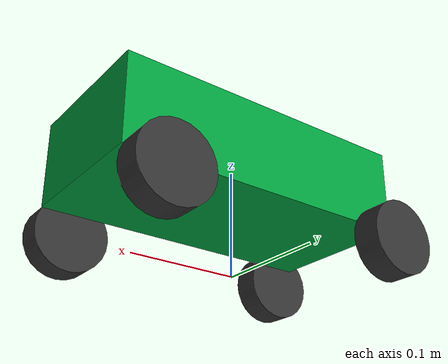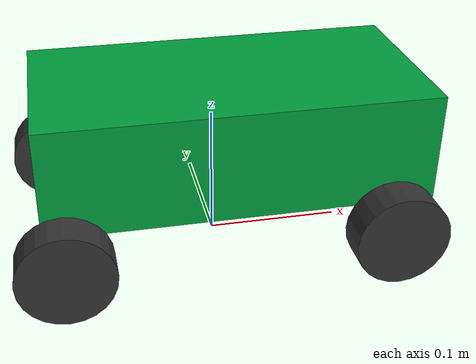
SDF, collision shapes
<?xml version="1.0"?>
<sdf version="1.8">
  <model name="r2">

    <link name="base_link">
      <pose>0 0 0.0215 0 0 0</pose>
      <inertial>
        <pose>0 0 0.06 0 0 0</pose>
        <mass>2.0</mass>
        <inertia>
          <ixx>0.00493</ixx><iyy>0.01473</iyy><izz>0.01633</izz>
          <ixy>0</ixy><ixz>0</ixz><iyz>0</iyz>
        </inertia>
      </inertial>
      <collision name="collision">
        <pose>0.01 0 0.07 0 0 0</pose>
        <geometry><box><size>0.28 0.14 0.08</size></box></geometry>
      </collision>
      <visual name="visual">
        <geometry>
          <mesh><uri>model://r2/meshes/base_link.stl</uri></mesh>
        </geometry>
        <material>
          <ambient>0 0.63 0.24 1</ambient>
          <diffuse>0 0.63 0.24 1</diffuse>
        </material>
      </visual>
      <visual name="camera">
        <pose>0.095117 0 0.09955 0 0.0057171 0</pose>
        <geometry>
          <mesh><uri>model://r2/meshes/camera_link.stl</uri></mesh>
        </geometry>
        <material>
          <ambient>0.08 0.08 0.08 1</ambient>
          <diffuse>0.08 0.08 0.08 1</diffuse>
        </material>
      </visual>
    </link>

    <!-- Rear drive wheels. Joint axis +y, so positive joint velocity drives forward. -->
    <link name="rear_left_wheel">
      <pose>-0.11607 0.08425 0.0345 0 0 0</pose>
      <inertial>
        <mass>0.06</mass>
        <inertia>
          <ixx>2.12e-5</ixx><iyy>3.57e-5</iyy><izz>2.12e-5</izz>
          <ixy>0</ixy><ixz>0</ixz><iyz>0</iyz>
        </inertia>
      </inertial>
      <collision name="collision">
        <pose>0 0 0 1.5707963 0 0</pose>
        <geometry><cylinder><radius>0.0345</radius><length>0.026</length></cylinder></geometry>
        <surface><friction><ode><mu>1.0</mu><mu2>1.0</mu2></ode></friction></surface>
      </collision>
      <visual name="visual">
        <geometry><mesh><uri>model://r2/meshes/back_right_link.stl</uri></mesh></geometry>
        <material><ambient>0.2 0.2 0.2 1</ambient><diffuse>0.2 0.2 0.2 1</diffuse></material>
      </visual>
    </link>

    <link name="rear_right_wheel">
      <pose>-0.11607 -0.08425 0.0345 0 0 0</pose>
      <inertial>
        <mass>0.06</mass>
        <inertia>
          <ixx>2.12e-5</ixx><iyy>3.57e-5</iyy><izz>2.12e-5</izz>
          <ixy>0</ixy><ixz>0</ixz><iyz>0</iyz>
        </inertia>
      </inertial>
      <collision name="collision">
        <pose>0 0 0 1.5707963 0 0</pose>
        <geometry><cylinder><radius>0.0345</radius><length>0.026</length></cylinder></geometry>
        <surface><friction><ode><mu>1.0</mu><mu2>1.0</mu2></ode></friction></surface>
      </collision>
      <visual name="visual">
        <geometry><mesh><uri>model://r2/meshes/back_right_link.stl</uri></mesh></geometry>
        <material><ambient>0.2 0.2 0.2 1</ambient><diffuse>0.2 0.2 0.2 1</diffuse></material>
      </visual>
    </link>

    <joint name="rear_left_wheel_joint" type="revolute">
      <parent>base_link</parent>
      <child>rear_left_wheel</child>
      <axis><xyz>0 1 0</xyz><limit><lower>-1e16</lower><upper>1e16</upper></limit></axis>
    </joint>

    <joint name="rear_right_wheel_joint" type="revolute">
      <parent>base_link</parent>
      <child>rear_right_wheel</child>
      <axis><xyz>0 1 0</xyz><limit><lower>-1e16</lower><upper>1e16</upper></limit></axis>
    </joint>

    <!-- Front steering knuckles, pivot at the wheel centre. -->
    <link name="front_left_steer">
      <pose>0.11922 0.08425 0.0345 0 0 0</pose>
      <inertial>
        <mass>0.01</mass>
        <inertia>
          <ixx>1e-6</ixx><iyy>1e-6</iyy><izz>1e-6</izz>
          <ixy>0</ixy><ixz>0</ixz><iyz>0</iyz>
        </inertia>
      </inertial>
    </link>

    <link name="front_right_steer">
      <pose>0.11922 -0.08425 0.0345 0 0 0</pose>
      <inertial>
        <mass>0.01</mass>
        <inertia>
          <ixx>1e-6</ixx><iyy>1e-6</iyy><izz>1e-6</izz>
          <ixy>0</ixy><ixz>0</ixz><iyz>0</iyz>
        </inertia>
      </inertial>
    </link>

    <joint name="front_left_steer_joint" type="revolute">
      <parent>base_link</parent>
      <child>front_left_steer</child>
      <axis><xyz>0 0 1</xyz><limit><lower>-0.6</lower><upper>0.6</upper></limit></axis>
    </joint>

    <joint name="front_right_steer_joint" type="revolute">
      <parent>base_link</parent>
      <child>front_right_steer</child>
      <axis><xyz>0 0 1</xyz><limit><lower>-0.6</lower><upper>0.6</upper></limit></axis>
    </joint>

    <link name="front_left_wheel">
      <pose>0.11922 0.08425 0.0345 0 0 0</pose>
      <inertial>
        <mass>0.06</mass>
        <inertia>
          <ixx>2.12e-5</ixx><iyy>3.57e-5</iyy><izz>2.12e-5</izz>
          <ixy>0</ixy><ixz>0</ixz><iyz>0</iyz>
        </inertia>
      </inertial>
      <collision name="collision">
        <pose>0 0 0 1.5707963 0 0</pose>
        <geometry><cylinder><radius>0.0345</radius><length>0.026</length></cylinder></geometry>
        <surface><friction><ode><mu>1.0</mu><mu2>1.0</mu2></ode></friction></surface>
      </collision>
      <visual name="visual">
        <geometry><mesh><uri>model://r2/meshes/back_right_link.stl</uri></mesh></geometry>
        <material><ambient>0.2 0.2 0.2 1</ambient><diffuse>0.2 0.2 0.2 1</diffuse></material>
      </visual>
    </link>

    <link name="front_right_wheel">
      <pose>0.11922 -0.08425 0.0345 0 0 0</pose>
      <inertial>
        <mass>0.06</mass>
        <inertia>
          <ixx>2.12e-5</ixx><iyy>3.57e-5</iyy><izz>2.12e-5</izz>
          <ixy>0</ixy><ixz>0</ixz><iyz>0</iyz>
        </inertia>
      </inertial>
      <collision name="collision">
        <pose>0 0 0 1.5707963 0 0</pose>
        <geometry><cylinder><radius>0.0345</radius><length>0.026</length></cylinder></geometry>
        <surface><friction><ode><mu>1.0</mu><mu2>1.0</mu2></ode></friction></surface>
      </collision>
      <visual name="visual">
        <geometry><mesh><uri>model://r2/meshes/back_right_link.stl</uri></mesh></geometry>
        <material><ambient>0.2 0.2 0.2 1</ambient><diffuse>0.2 0.2 0.2 1</diffuse></material>
      </visual>
    </link>

    <joint name="front_left_wheel_joint" type="revolute">
      <parent>front_left_steer</parent>
      <child>front_left_wheel</child>
      <axis><xyz>0 1 0</xyz><limit><lower>-1e16</lower><upper>1e16</upper></limit></axis>
    </joint>

    <joint name="front_right_wheel_joint" type="revolute">
      <parent>front_right_steer</parent>
      <child>front_right_wheel</child>
      <axis><xyz>0 1 0</xyz><limit><lower>-1e16</lower><upper>1e16</upper></limit></axis>
    </joint>

    <plugin filename="ignition-gazebo-ackermann-steering-system"
            name="ignition::gazebo::systems::AckermannSteering">
      <left_joint>rear_left_wheel_joint</left_joint>
      <right_joint>rear_right_wheel_joint</right_joint>
      <left_steering_joint>front_left_steer_joint</left_steering_joint>
      <right_steering_joint>front_right_steer_joint</right_steering_joint>
      <kingpin_width>0.1685</kingpin_width>
      <steering_limit>0.6</steering_limit>
      <wheel_base>0.23529</wheel_base>
      <wheel_separation>0.1685</wheel_separation>
      <wheel_radius>0.0345</wheel_radius>
      <min_velocity>-1.0</min_velocity>
      <max_velocity>1.0</max_velocity>
      <min_acceleration>-3.0</min_acceleration>
      <max_acceleration>3.0</max_acceleration>
    </plugin>

    <plugin filename="ignition-gazebo-joint-state-publisher-system"
            name="ignition::gazebo::systems::JointStatePublisher"/>

    <!-- Model pose in the world frame on /model/r2/pose. -->
    <plugin filename="ignition-gazebo-pose-publisher-system"
            name="ignition::gazebo::systems::PosePublisher">
      <publish_link_pose>false</publish_link_pose>
      <publish_collision_pose>false</publish_collision_pose>
      <publish_visual_pose>false</publish_visual_pose>
      <publish_nested_model_pose>true</publish_nested_model_pose>
      <use_pose_vector_msg>false</use_pose_vector_msg>
      <update_frequency>100</update_frequency>
    </plugin>
  </model>
</sdf>
